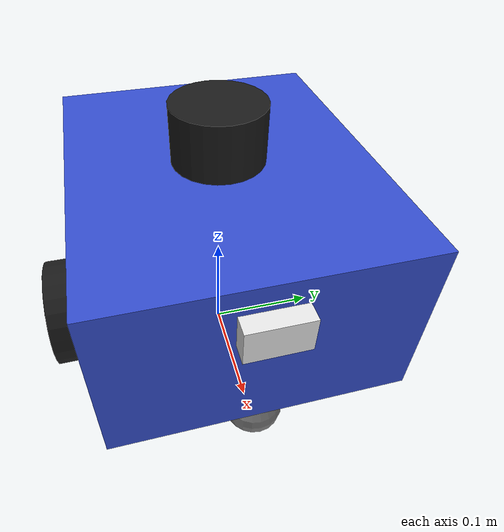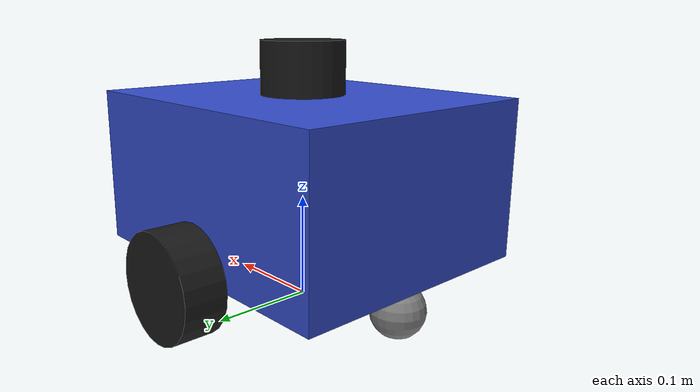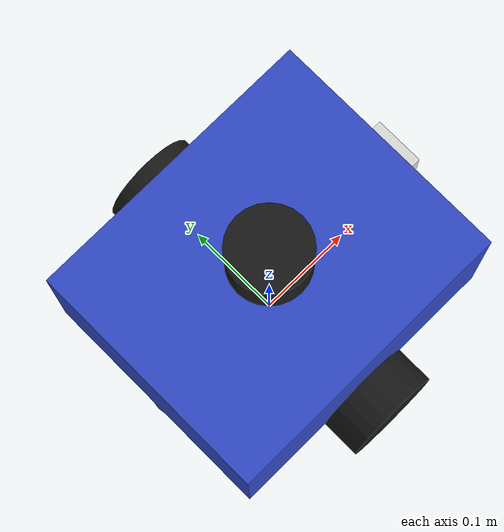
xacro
<?xml version="1.0"?>
<robot xmlns:xacro="http://www.ros.org/wiki/xacro" name="amr_robot">

  <!-- ============================================================
       PROPERTIES
  ============================================================ -->
  <xacro:property name="PI" value="3.14159265358979"/>

  <!-- Chassis -->
  <xacro:property name="chassis_length" value="0.30"/>
  <xacro:property name="chassis_width"  value="0.25"/>
  <xacro:property name="chassis_height" value="0.15"/>
  <xacro:property name="chassis_mass"   value="5.0"/>

  <!-- Drive wheels -->
  <xacro:property name="wheel_radius"     value="0.05"/>
  <xacro:property name="wheel_width"      value="0.04"/>
  <xacro:property name="wheel_mass"       value="0.5"/>
  <!-- center-to-center distance: chassis_width + wheel_width -->
  <xacro:property name="wheel_separation" value="0.29"/>

  <!-- Caster ball -->
  <xacro:property name="caster_radius" value="0.025"/>
  <xacro:property name="caster_mass"   value="0.1"/>

  <!-- Sensor sizes (visual only) -->
  <xacro:property name="lidar_radius" value="0.04"/>
  <xacro:property name="lidar_height" value="0.05"/>
  <xacro:property name="imu_size"     value="0.02"/>
  <xacro:property name="cam_l"        value="0.03"/>
  <xacro:property name="cam_w"        value="0.05"/>
  <xacro:property name="cam_h"        value="0.03"/>

  <!-- ============================================================
       MATERIALS
  ============================================================ -->
  <material name="blue">   <color rgba="0.2 0.3 0.8 1.0"/> </material>
  <material name="dark">   <color rgba="0.1 0.1 0.1 1.0"/> </material>
  <material name="grey">   <color rgba="0.5 0.5 0.5 1.0"/> </material>
  <material name="white">  <color rgba="0.9 0.9 0.9 1.0"/> </material>
  <material name="orange"> <color rgba="1.0 0.5 0.0 1.0"/> </material>
  <material name="green">  <color rgba="0.0 0.8 0.2 1.0"/> </material>

  <!-- ============================================================
       BASE FOOTPRINT  (virtual ground-plane frame for Nav2)
  ============================================================ -->
  <link name="base_footprint"/>

  <joint name="base_footprint_joint" type="fixed">
    <parent link="base_footprint"/>
    <child  link="base_link"/>
    <!-- base_link sits at wheel-axle height + half chassis height above ground -->
    <origin xyz="0 0 ${wheel_radius + chassis_height/2.0}" rpy="0 0 0"/>
  </joint>

  <!-- ============================================================
       CHASSIS (base_link)
  ============================================================ -->
  <link name="base_link">
    <visual>
      <origin xyz="0 0 0" rpy="0 0 0"/>
      <geometry>
        <box size="${chassis_length} ${chassis_width} ${chassis_height}"/>
      </geometry>
      <material name="blue"/>
    </visual>
    <collision>
      <origin xyz="0 0 0" rpy="0 0 0"/>
      <geometry>
        <box size="${chassis_length} ${chassis_width} ${chassis_height}"/>
      </geometry>
    </collision>
    <inertial>
      <origin xyz="0 0 0" rpy="0 0 0"/>
      <mass value="${chassis_mass}"/>
      <inertia
        ixx="${chassis_mass/12.0*(chassis_width*chassis_width   + chassis_height*chassis_height)}"
        iyy="${chassis_mass/12.0*(chassis_length*chassis_length + chassis_height*chassis_height)}"
        izz="${chassis_mass/12.0*(chassis_length*chassis_length + chassis_width*chassis_width)}"
        ixy="0" ixz="0" iyz="0"/>
    </inertial>
  </link>

  <!-- ============================================================
       DRIVE WHEELS  (macro for left/right symmetry)
  ============================================================ -->
  <xacro:macro name="drive_wheel" params="name y_reflect">
    <link name="${name}_wheel">
      <visual>
        <!-- rotate cylinder so its length axis aligns with Y (axle direction) -->
        <origin xyz="0 0 0" rpy="${PI/2.0} 0 0"/>
        <geometry>
          <cylinder radius="${wheel_radius}" length="${wheel_width}"/>
        </geometry>
        <material name="dark"/>
      </visual>
      <collision>
        <origin xyz="0 0 0" rpy="${PI/2.0} 0 0"/>
        <geometry>
          <cylinder radius="${wheel_radius}" length="${wheel_width}"/>
        </geometry>
      </collision>
      <inertial>
        <origin xyz="0 0 0" rpy="0 0 0"/>
        <mass value="${wheel_mass}"/>
        <inertia
          ixx="${wheel_mass/12.0*(3*wheel_radius*wheel_radius + wheel_width*wheel_width)}"
          iyy="${wheel_mass/12.0*(3*wheel_radius*wheel_radius + wheel_width*wheel_width)}"
          izz="${wheel_mass/2.0*wheel_radius*wheel_radius}"
          ixy="0" ixz="0" iyz="0"/>
      </inertial>
    </link>

    <joint name="${name}_wheel_joint" type="continuous">
      <parent link="base_link"/>
      <child  link="${name}_wheel"/>
      <origin xyz="0 ${y_reflect*wheel_separation/2.0} ${-chassis_height/2.0}" rpy="0 0 0"/>
      <axis xyz="0 1 0"/>
    </joint>
  </xacro:macro>

  <xacro:drive_wheel name="left"  y_reflect=" 1"/>
  <xacro:drive_wheel name="right" y_reflect="-1"/>

  <!-- ============================================================
       CASTER WHEEL  (front, zero-friction ball)
  ============================================================ -->
  <link name="caster_wheel">
    <visual>
      <origin xyz="0 0 0" rpy="0 0 0"/>
      <geometry>
        <sphere radius="${caster_radius}"/>
      </geometry>
      <material name="grey"/>
    </visual>
    <collision>
      <origin xyz="0 0 0" rpy="0 0 0"/>
      <geometry>
        <sphere radius="${caster_radius}"/>
      </geometry>
    </collision>
    <inertial>
      <origin xyz="0 0 0" rpy="0 0 0"/>
      <mass value="${caster_mass}"/>
      <inertia
        ixx="${2.0/5.0*caster_mass*caster_radius*caster_radius}"
        iyy="${2.0/5.0*caster_mass*caster_radius*caster_radius}"
        izz="${2.0/5.0*caster_mass*caster_radius*caster_radius}"
        ixy="0" ixz="0" iyz="0"/>
    </inertial>
  </link>

  <joint name="caster_front_joint" type="fixed">
    <parent link="base_link"/>
    <child  link="caster_wheel"/>
    <origin xyz="${chassis_length/2.0 - caster_radius}
                 0
                 ${caster_radius - wheel_radius - chassis_height/2.0}"
            rpy="0 0 0"/>
  </joint>

  <!-- ============================================================
       CASTER REAR  (mirrors front caster — creates stable 4-point base)
  ============================================================ -->
  <link name="caster_wheel_rear">
    <visual>
      <origin xyz="0 0 0" rpy="0 0 0"/>
      <geometry>
        <sphere radius="${caster_radius}"/>
      </geometry>
      <material name="grey"/>
    </visual>
    <collision>
      <origin xyz="0 0 0" rpy="0 0 0"/>
      <geometry>
        <sphere radius="${caster_radius}"/>
      </geometry>
    </collision>
    <inertial>
      <origin xyz="0 0 0" rpy="0 0 0"/>
      <mass value="${caster_mass}"/>
      <inertia
        ixx="${2.0/5.0*caster_mass*caster_radius*caster_radius}"
        iyy="${2.0/5.0*caster_mass*caster_radius*caster_radius}"
        izz="${2.0/5.0*caster_mass*caster_radius*caster_radius}"
        ixy="0" ixz="0" iyz="0"/>
    </inertial>
  </link>

  <joint name="caster_rear_joint" type="fixed">
    <parent link="base_link"/>
    <child  link="caster_wheel_rear"/>
    <origin xyz="${-(chassis_length/2.0 - caster_radius)}
                 0
                 ${caster_radius - wheel_radius - chassis_height/2.0}"
            rpy="0 0 0"/>
  </joint>

  <!-- ============================================================
       LIDAR  (Hokuyo-style, 270° FOV, on top of chassis)
  ============================================================ -->
  <link name="lidar_link">
    <visual>
      <origin xyz="0 0 0" rpy="0 0 0"/>
      <geometry>
        <cylinder radius="${lidar_radius}" length="${lidar_height}"/>
      </geometry>
      <material name="dark"/>
    </visual>
    <collision>
      <origin xyz="0 0 0" rpy="0 0 0"/>
      <geometry>
        <cylinder radius="${lidar_radius}" length="${lidar_height}"/>
      </geometry>
    </collision>
    <inertial>
      <origin xyz="0 0 0" rpy="0 0 0"/>
      <mass value="0.1"/>
      <inertia ixx="1e-5" iyy="1e-5" izz="1e-5" ixy="0" ixz="0" iyz="0"/>
    </inertial>
  </link>

  <joint name="lidar_joint" type="fixed">
    <parent link="base_link"/>
    <child  link="lidar_link"/>
    <origin xyz="0 0 ${chassis_height/2.0 + lidar_height/2.0}" rpy="0 0 0"/>
  </joint>

  <!-- ============================================================
       IMU  (at chassis center)
  ============================================================ -->
  <link name="imu_link">
    <visual>
      <origin xyz="0 0 0" rpy="0 0 0"/>
      <geometry>
        <box size="${imu_size} ${imu_size} ${imu_size}"/>
      </geometry>
      <material name="orange"/>
    </visual>
    <collision>
      <origin xyz="0 0 0" rpy="0 0 0"/>
      <geometry>
        <box size="${imu_size} ${imu_size} ${imu_size}"/>
      </geometry>
    </collision>
    <inertial>
      <origin xyz="0 0 0" rpy="0 0 0"/>
      <mass value="0.01"/>
      <inertia ixx="1e-6" iyy="1e-6" izz="1e-6" ixy="0" ixz="0" iyz="0"/>
    </inertial>
  </link>

  <joint name="imu_joint" type="fixed">
    <parent link="base_link"/>
    <child  link="imu_link"/>
    <origin xyz="0 0 0" rpy="0 0 0"/>
  </joint>

  <!-- ============================================================
       CAMERA  (front-facing, for AprilTag docking in Phase 9)
  ============================================================ -->
  <link name="camera_link">
    <visual>
      <origin xyz="0 0 0" rpy="0 0 0"/>
      <geometry>
        <box size="${cam_l} ${cam_w} ${cam_h}"/>
      </geometry>
      <material name="white"/>
    </visual>
    <collision>
      <origin xyz="0 0 0" rpy="0 0 0"/>
      <geometry>
        <box size="${cam_l} ${cam_w} ${cam_h}"/>
      </geometry>
    </collision>
    <inertial>
      <origin xyz="0 0 0" rpy="0 0 0"/>
      <mass value="0.05"/>
      <inertia ixx="1e-6" iyy="1e-6" izz="1e-6" ixy="0" ixz="0" iyz="0"/>
    </inertial>
  </link>

  <joint name="camera_joint" type="fixed">
    <parent link="base_link"/>
    <child  link="camera_link"/>
    <!-- front face of chassis, slightly above center -->
    <origin xyz="${chassis_length/2.0} 0 ${chassis_height/4.0}" rpy="0 0 0"/>
  </joint>

  <!-- camera optical frame (Z forward, X right — standard ROS camera convention) -->
  <link name="camera_optical_link"/>
  <joint name="camera_optical_joint" type="fixed">
    <parent link="camera_link"/>
    <child  link="camera_optical_link"/>
    <origin xyz="0 0 0" rpy="${-PI/2.0} 0 ${-PI/2.0}"/>
  </joint>

  <!-- ============================================================
       GAZEBO PROPERTIES
  ============================================================ -->

  <!-- Chassis colour -->
  <gazebo reference="base_link">
    <material>Gazebo/Blue</material>
  </gazebo>

  <!-- Drive wheels: high friction so they grip the floor -->
  <gazebo reference="left_wheel">
    <mu1>0.9</mu1>
    <mu2>0.9</mu2>
    <kp>1000000.0</kp>
    <kd>100.0</kd>
    <material>Gazebo/DarkGrey</material>
  </gazebo>
  <gazebo reference="right_wheel">
    <mu1>0.9</mu1>
    <mu2>0.9</mu2>
    <kp>1000000.0</kp>
    <kd>100.0</kd>
    <material>Gazebo/DarkGrey</material>
  </gazebo>

  <!-- Casters: near-zero friction so they slide freely -->
  <gazebo reference="caster_wheel">
    <mu1>0.01</mu1>
    <mu2>0.01</mu2>
    <kp>1000000.0</kp>
    <kd>100.0</kd>
    <material>Gazebo/Grey</material>
  </gazebo>
  <gazebo reference="caster_wheel_rear">
    <mu1>0.01</mu1>
    <mu2>0.01</mu2>
    <kp>1000000.0</kp>
    <kd>100.0</kd>
    <material>Gazebo/Grey</material>
  </gazebo>

  <!-- ============================================================
       GAZEBO PLUGIN: DIFFERENTIAL DRIVE
  ============================================================ -->
  <gazebo>
    <plugin name="diff_drive" filename="libgazebo_ros_diff_drive.so">
      <left_joint>left_wheel_joint</left_joint>
      <right_joint>right_wheel_joint</right_joint>
      <wheel_separation>${wheel_separation}</wheel_separation>
      <wheel_diameter>${2*wheel_radius}</wheel_diameter>
      <max_wheel_torque>20</max_wheel_torque>
      <max_wheel_acceleration>1.0</max_wheel_acceleration>
      <command_topic>cmd_vel</command_topic>
      <odometry_topic>odom</odometry_topic>
      <odometry_frame>odom</odometry_frame>
      <robot_base_frame>base_footprint</robot_base_frame>
      <publish_odom>true</publish_odom>
      <publish_odom_tf>false</publish_odom_tf>  <!-- EKF owns odom→base_footprint TF -->
      <publish_wheel_tf>true</publish_wheel_tf>
      <publish_wheel_joint_state>true</publish_wheel_joint_state>
    </plugin>
  </gazebo>

  <!-- ============================================================
       GAZEBO PLUGIN: LIDAR (270° FOV, 10 Hz, 360 samples)
  ============================================================ -->
  <gazebo reference="lidar_link">
    <sensor name="lidar" type="ray">
      <always_on>true</always_on>
      <visualize>false</visualize>
      <update_rate>10</update_rate>
      <ray>
        <scan>
          <horizontal>
            <samples>360</samples>
            <resolution>1</resolution>
            <min_angle>${-3.0*PI/4.0}</min_angle>
            <max_angle>${ 3.0*PI/4.0}</max_angle>
          </horizontal>
        </scan>
        <range>
          <min>0.12</min>
          <max>10.0</max>
          <resolution>0.01</resolution>
        </range>
        <noise>
          <type>gaussian</type>
          <mean>0.0</mean>
          <stddev>0.01</stddev>
        </noise>
      </ray>
      <plugin name="lidar_plugin" filename="libgazebo_ros_ray_sensor.so">
        <ros>
          <remapping>~/out:=scan</remapping>
        </ros>
        <output_type>sensor_msgs/LaserScan</output_type>
        <frame_name>lidar_link</frame_name>
      </plugin>
    </sensor>
  </gazebo>

  <!-- ============================================================
       GAZEBO PLUGIN: IMU (100 Hz)
  ============================================================ -->
  <gazebo reference="imu_link">
    <sensor name="imu_sensor" type="imu">
      <always_on>true</always_on>
      <update_rate>100</update_rate>
      <imu>
        <angular_velocity>
          <x><noise type="gaussian"><mean>0.0</mean><stddev>2e-4</stddev><bias_mean>0.0000075</bias_mean><bias_stddev>0.0000008</bias_stddev></noise></x>
          <y><noise type="gaussian"><mean>0.0</mean><stddev>2e-4</stddev><bias_mean>0.0000075</bias_mean><bias_stddev>0.0000008</bias_stddev></noise></y>
          <z><noise type="gaussian"><mean>0.0</mean><stddev>2e-4</stddev><bias_mean>0.0000075</bias_mean><bias_stddev>0.0000008</bias_stddev></noise></z>
        </angular_velocity>
        <linear_acceleration>
          <x><noise type="gaussian"><mean>0.0</mean><stddev>1.7e-2</stddev><bias_mean>0.1</bias_mean><bias_stddev>0.001</bias_stddev></noise></x>
          <y><noise type="gaussian"><mean>0.0</mean><stddev>1.7e-2</stddev><bias_mean>0.1</bias_mean><bias_stddev>0.001</bias_stddev></noise></y>
          <z><noise type="gaussian"><mean>0.0</mean><stddev>1.7e-2</stddev><bias_mean>0.1</bias_mean><bias_stddev>0.001</bias_stddev></noise></z>
        </linear_acceleration>
      </imu>
      <plugin name="imu_plugin" filename="libgazebo_ros_imu_sensor.so">
        <ros>
          <remapping>~/out:=imu</remapping>
        </ros>
        <initial_orientation_as_reference>false</initial_orientation_as_reference>
      </plugin>
    </sensor>
  </gazebo>

  <!-- ============================================================
       GAZEBO PLUGIN: CAMERA (30 Hz, 640x480, front-facing)
  ============================================================ -->
  <gazebo reference="camera_link">
    <sensor name="camera_sensor" type="camera">
      <always_on>true</always_on>
      <visualize>true</visualize>
      <update_rate>30</update_rate>
      <camera>
        <horizontal_fov>1.3962634</horizontal_fov>
        <image>
          <width>640</width>
          <height>480</height>
          <format>R8G8B8</format>
        </image>
        <clip>
          <near>0.02</near>
          <far>300</far>
        </clip>
        <noise>
          <type>gaussian</type>
          <mean>0.0</mean>
          <stddev>0.007</stddev>
        </noise>
      </camera>
      <plugin name="camera_plugin" filename="libgazebo_ros_camera.so">
        <camera_name>camera</camera_name>
        <frame_name>camera_optical_link</frame_name>
        <hack_baseline>0</hack_baseline>
      </plugin>
    </sensor>
  </gazebo>

</robot>
